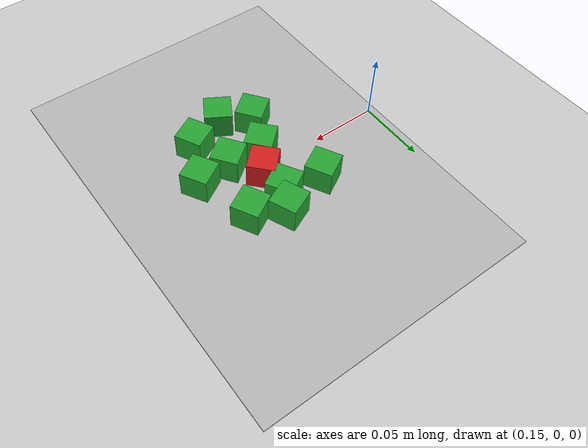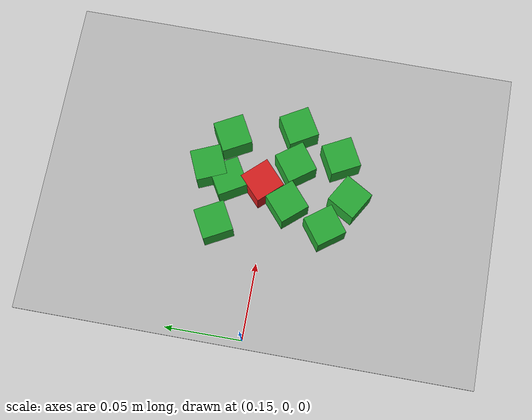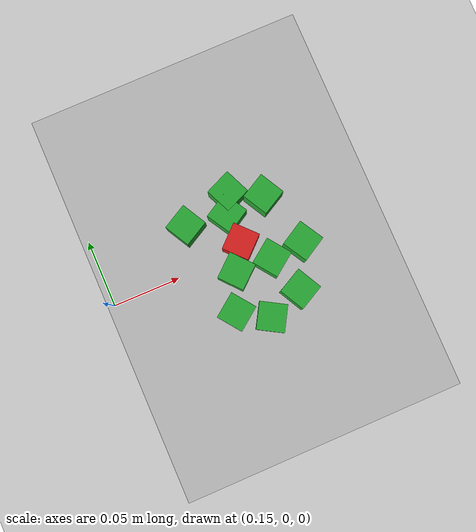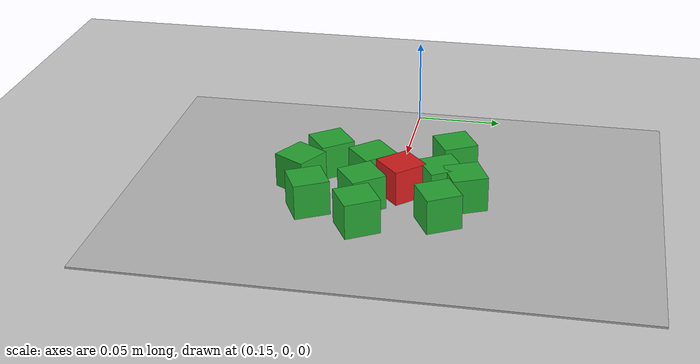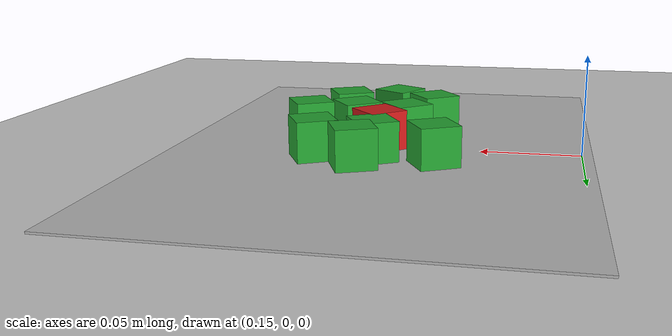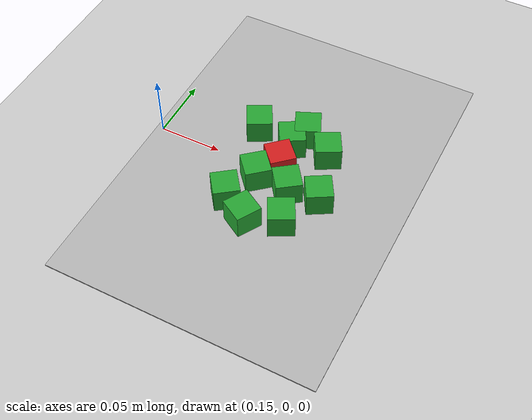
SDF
<sdf version='1.7'>
    <world name='default'>
        <scene>
            <ambient>0.0 0.0 0.0 1.0</ambient>
            <shadows>0</shadows>
            <background>0.7 0.7 0.7 1</background>
        </scene>
        <!-- A global light source -->
        <include>
            <uri>model://sun</uri>
        </include>

        <!-- A ground plane -->
        <include>
            <uri>model://ground_plane</uri>
        </include>

        <!-- Niryo Workspace -->
        <model name='workspace_1'>
            <include>
                <uri>model://workspace_1</uri>
            </include>
            <pose frame=''>0.25 0.0 0.0005 0.0 0.0 0.0</pose>
        </model>

        <!-- Place Workspace -->

        <!--CUBES-->

        <model name='cube_red'>
            <include>
                <uri>model://cube_red</uri>
            </include>
            <pose frame=''>0.251 0.00503 0.011 0.000183 0.0 0.750</pose>
        </model>

        <model name='cube_green'>
            <include>
                <uri>model://cube_green</uri>
            </include>
            <pose frame=''>0.2566 0.041363 0.011 0 0 0.41164</pose>
        </model>

        <model name='cube_green1'>
            <include>
                <uri>model://cube_green</uri>
            </include>
            <pose frame=''>0.279 0.0296 0.011 0.0 0.0 0.5</pose>
        </model>

        <model name='cube_green2'>
            <include>
                <uri>model://cube_green</uri>
            </include>
            <pose frame=''>0.25 0.0272 0.011 0.0 0.0 0.5326</pose>
        </model>
        <model name='cube_green3'>
            <include>
                <uri>model://cube_green</uri>
            </include>
            <pose frame=''>0.2199 0.031 0.011 -0.00036 0.0 0.5</pose>
        </model>
        <model name='cube_green4'>
            <include>
                <uri>model://cube_green</uri>
            </include>
            <pose frame=''>0.24 -0.013 0.011 0.0 -0.000184 0.7153</pose>
        </model>
        <model name='cube_green5'>
            <include>
                <uri>model://cube_green</uri>
            </include>
            <pose frame=''>0.26666 -0.014079 0.011 0.0 0.000183 0.634</pose>
        </model>
        <model name='cube_green6'>
            <include>
                <uri>model://cube_green</uri>
            </include>
            <pose frame=''>0.291355 -0.011962 0.011 0.0 0.0 0.527</pose>
        </model>
        <model name='cube_green7'>
            <include>
                <uri>model://cube_green</uri>
            </include>
            <pose frame=''>0.2288 -0.039197 0.011 0.0 0.0 0.641550</pose>
        </model>
        <model name='cube_green8'>
            <include>
                <uri>model://cube_green</uri>
            </include>
            <pose frame=''>0.25 -0.052115 0.011 0.0 -0.000184 -0.5307</pose>
        </model>
        <model name='cube_green9'>
            <include>
                <uri>model://cube_green</uri>
            </include>
            <pose frame=''>0.2761 -0.042210 0.011 0.0 0.0 0.485</pose>
        </model>

        <physics name='default_physics' default='0' type='ode'>
            <max_step_size>0.001</max_step_size>
            <real_time_factor>1</real_time_factor>
            <real_time_update_rate>1000</real_time_update_rate>
        </physics>
        <!--GUI-->
        <gui fullscreen='0'>
            <camera name='user_camera'>
                <pose frame=''>0.198 -0.823 0.916 0 0.763 1.592</pose>
                <view_controller>orbit</view_controller>
                <projection_type>perspective</projection_type>
            </camera>
        </gui>
        <!-- SplotLight source -->
    <light name='user_spot_light_0' type='spot'>
      <pose>0.24066 -0.017779 1 0 -0 0</pose>
      <diffuse>0.5 0.5 0.5 1</diffuse>
      <specular>0.1 0.1 0.1 1</specular>
      <direction>0 0 -1</direction>
      <attenuation>
        <range>20</range>
        <constant>0.5</constant>
        <linear>0.01</linear>
        <quadratic>0.001</quadratic>
      </attenuation>
      <cast_shadows>0</cast_shadows>
      <spot>
        <inner_angle>0.6</inner_angle>
        <outer_angle>1</outer_angle>
        <falloff>1</falloff>
      </spot>
    </light>

    </world>
</sdf>

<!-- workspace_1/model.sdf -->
<sdf version='1.6'>
    <model name='Workspace1'>
        <link name='workspace_link'>
            <inertial>
                <mass>1000.0</mass>
                <inertia>
                    <ixx>4.508</ixx>
                    <ixy>0</ixy>
                    <ixz>0</ixz>
                    <iyy>8.184</iyy>
                    <iyz>0</iyz>
                    <izz>11.026</izz>
                </inertia>
                <pose frame=''>0 0 0 0 -0 0</pose>
            </inertial>
            <pose frame=''>0 0 0 0 -0 0</pose>
            <gravity>1</gravity>
            <self_collide>0</self_collide>
            <kinematic>0</kinematic>
            <enable_wind>0</enable_wind>

            <visual name='visual'>
                <cast_shadows>false</cast_shadows>
                <pose frame=''>0 0 0 0 0 0</pose>
                <geometry>
                    <box>
                        <size>0.21 0.297 0.001</size>
                    </box>
                </geometry>
                <material>
                    <script>
                        <uri>media://materials/scripts/workspace.material</uri>
                        <name>Niryo/Workspace1</name>
                    </script>
                </material>

                <transparency>0</transparency>
                <cast_shadows>1</cast_shadows>
            </visual>
            <collision name='collision'>
                <laser_retro>0</laser_retro>
                <max_contacts>10</max_contacts>
                <pose frame=''>0 0 0 0 -0 0</pose>
                <geometry>
                    <box>
                        <size>0.21 0.297 0.001</size>
                    </box>
                </geometry>
                <surface>
                    <friction>
                        <ode>
                            <mu>1</mu>
                            <mu2>1</mu2>
                            <fdir1>0 0 0</fdir1>
                            <slip1>0</slip1>
                            <slip2>0</slip2>
                        </ode>
                        <torsional>
                            <coefficient>1</coefficient>
                            <patch_radius>0</patch_radius>
                            <surface_radius>0</surface_radius>
                            <use_patch_radius>1</use_patch_radius>
                            <ode>
                                <slip>0</slip>
                            </ode>
                        </torsional>
                    </friction>
                    <bounce>
                        <restitution_coefficient>0</restitution_coefficient>
                        <threshold>1e+06</threshold>
                    </bounce>
                    <contact>
                        <collide_without_contact>0</collide_without_contact>
                        <collide_without_contact_bitmask>1</collide_without_contact_bitmask>
                        <collide_bitmask>1</collide_bitmask>
                        <ode>
                            <soft_cfm>0</soft_cfm>
                            <soft_erp>0.2</soft_erp>
                            <kp>1e+13</kp>
                            <kd>1</kd>
                            <max_vel>0.01</max_vel>
                            <min_depth>0</min_depth>
                        </ode>
                        <bullet>
                            <split_impulse>1</split_impulse>
                            <split_impulse_penetration_threshold>-0.01</split_impulse_penetration_threshold>
                            <soft_cfm>0</soft_cfm>
                            <soft_erp>0.2</soft_erp>
                            <kp>1e+13</kp>
                            <kd>1</kd>
                        </bullet>
                    </contact>
                </surface>
            </collision>
        </link>
        <static>0</static>
        <allow_auto_disable>1</allow_auto_disable>
    </model>
</sdf>

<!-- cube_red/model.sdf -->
<sdf version='1.6'>
  <model name='cube_red'>
    <link name='link_1'>
      <inertial>
        <mass>1e-4</mass>
        <inertia>
          <ixx>1.0e-8</ixx>
          <ixy>0</ixy>
          <ixz>0</ixz>
          <iyy>1.0e-8</iyy>
          <iyz>0</iyz>
          <izz>1.0e-8</izz>
        </inertia>
        <pose frame=''>0 0 0 0 -0 0</pose>
      </inertial>
      <pose frame=''>0 0 0 0 -0 0</pose>
      <gravity>1</gravity>
      <self_collide>0</self_collide>
      <kinematic>0</kinematic>
      <enable_wind>0</enable_wind>
      <visual name='visual'>
        <pose frame=''>0 0 0 0 -0 0</pose>
        <geometry>
          <box>
            <size>0.02 0.02 0.02</size>
          </box>
        </geometry>
        <material>
          <lighting>1</lighting>
          <script>
            <uri>file://media/materials/scripts/gazebo.material</uri>
            <name>Gazebo/Grey</name>
          </script>
          <shader type='vertex'>
            <normal_map>__default__</normal_map>
          </shader>
          <ambient>0.643 0 0 1</ambient>
          <diffuse>0.835 0.114 0.114 1</diffuse>
          <specular>0.333 0.341 0.325 1</specular>
          <emissive>0 0 0 1</emissive>
        </material>
        <transparency>0</transparency>
        <cast_shadows>1</cast_shadows>
      </visual>
      <collision name='collision'>
        <laser_retro>0</laser_retro>
        <max_contacts>50</max_contacts>
        <pose frame=''>0 0 0 0 -0 0</pose>
        <geometry>
          <box>
            <size>0.02 0.02 0.02</size>
          </box>
        </geometry>
        <surface>
          <friction>
            <ode>
              <mu>1e+6</mu>
              <mu2>1e+6</mu2>
            </ode>
            <torsional>
              <coefficient>1</coefficient>
              <patch_radius>0</patch_radius>
              <surface_radius>0</surface_radius>
              <use_patch_radius>1</use_patch_radius>
              <ode>
                <slip>0</slip>
              </ode>
            </torsional>
          </friction>
          <bounce>
            <restitution_coefficient>0</restitution_coefficient>
            <threshold>1e+06</threshold>
          </bounce>
          <contact>
            <collide_without_contact>0</collide_without_contact>
            <collide_without_contact_bitmask>1</collide_without_contact_bitmask>
            <collide_bitmask>1</collide_bitmask>
            <ode>
              <soft_cfm>0</soft_cfm>
              <soft_erp>0.2</soft_erp>
              <kp>1e+13</kp>
              <kd>1</kd>
              <max_vel>0.0</max_vel>
              <min_depth>0.002</min_depth>
            </ode>
            <bullet>
              <split_impulse>1</split_impulse>
              <split_impulse_penetration_threshold>-0.01</split_impulse_penetration_threshold>
              <soft_cfm>0</soft_cfm>
              <soft_erp>0.2</soft_erp>
              <kp>1e+13</kp>
              <kd>1</kd>
            </bullet>
          </contact>
        </surface>
      </collision>
    </link>
    <static>0</static>
    <allow_auto_disable>1</allow_auto_disable>
  </model>
</sdf>

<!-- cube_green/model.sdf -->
<sdf version='1.6'>
  <model name='cube_green'>
    <link name='link_1'>
      <inertial>
        <mass>1e-4</mass>
        <inertia>
          <ixx>1.0e-8</ixx>
          <ixy>0</ixy>
          <ixz>0</ixz>
          <iyy>1.0e-8</iyy>
          <iyz>0</iyz>
          <izz>1.0e-8</izz>
        </inertia>
        <pose frame=''>0 0 0 0 -0 0</pose>
      </inertial>
      <pose frame=''>0 0 0 0 -0 0</pose>
      <gravity>1</gravity>
      <self_collide>0</self_collide>
      <kinematic>0</kinematic>
      <enable_wind>0</enable_wind>
      <visual name='visual'>
        <pose frame=''>0 0 0 0 -0 0</pose>
        <geometry>
          <box>
            <size>0.02 0.02 0.02</size>
          </box>
        </geometry>
        <material>
          <lighting>1</lighting>
          <script>
            <uri>file://media/materials/scripts/gazebo.material</uri>
            <name>Gazebo/Green</name>
          </script>
          <shader type='vertex'>
            <normal_map>__default__</normal_map>
          </shader>
          <ambient>0.208 0.706 0.298 1</ambient>
          <diffuse>0.451 0.824 0.082 1</diffuse>
          <specular>0.18 0.204 0.212 1</specular>
          <emissive>0 0 0 1</emissive>
        </material>
        <transparency>0</transparency>
        <cast_shadows>1</cast_shadows>
      </visual>
      <collision name='collision'>
        <laser_retro>0</laser_retro>
        <max_contacts>50</max_contacts>
        <pose frame=''>0 0 0 0 -0 0</pose>
        <geometry>
          <box>
            <size>0.02 0.02 0.02</size>
          </box>
        </geometry>
        <surface>
          <friction>
            <ode>
              <mu>1e+6</mu>
              <mu2>1e+6</mu2>
            </ode>
            <torsional>
              <coefficient>1</coefficient>
              <patch_radius>0</patch_radius>
              <surface_radius>0</surface_radius>
              <use_patch_radius>1</use_patch_radius>
              <ode>
                <slip>0</slip>
              </ode>
            </torsional>
          </friction>
          <bounce>
            <restitution_coefficient>0</restitution_coefficient>
            <threshold>1e+06</threshold>
          </bounce>
          <contact>
            <collide_without_contact>0</collide_without_contact>
            <collide_without_contact_bitmask>1</collide_without_contact_bitmask>
            <collide_bitmask>1</collide_bitmask>
            <ode>
              <soft_cfm>0</soft_cfm>
              <soft_erp>0.2</soft_erp>
              <kp>1e+13</kp>
              <kd>1</kd>
              <max_vel>0.0</max_vel>
              <min_depth>0.002</min_depth>
            </ode>
            <bullet>
              <split_impulse>1</split_impulse>
              <split_impulse_penetration_threshold>-0.01</split_impulse_penetration_threshold>
              <soft_cfm>0</soft_cfm>
              <soft_erp>0.2</soft_erp>
              <kp>1e+13</kp>
              <kd>1</kd>
            </bullet>
          </contact>
        </surface>
      </collision>
    </link>
    <static>0</static>
    <allow_auto_disable>1</allow_auto_disable>
  </model>
</sdf>
